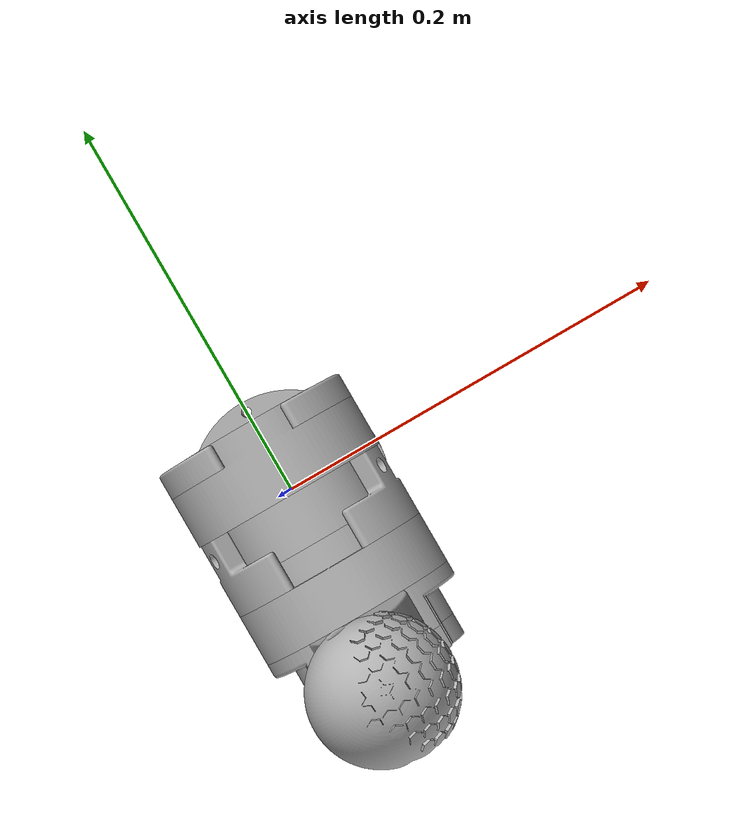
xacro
<?xml version="1.0" ?>
<robot name="rl12dof_urdf" xmlns:xacro="http://www.ros.org/wiki/xacro">

<xacro:include filename="$(find rl12dof_urdf_description)/urdf/materials.xacro" />
<xacro:include filename="$(find rl12dof_urdf_description)/urdf/rl12dof_urdf.ros2control" />
<xacro:include filename="$(find rl12dof_urdf_description)/urdf/rl12dof_urdf.gazebo" />
<link name="base_link">
  <inertial>
    <origin xyz="-4.647671670063145e-15 1.3063770683227124e-17 -0.009443778341178793" rpy="0 0 0"/>
    <mass value="1.843383246257708"/>
    <inertia ixx="0.00115" iyy="0.00115" izz="0.001895" ixy="-0.0" iyz="0.0" ixz="0.0"/>
  </inertial>
  <visual>
    <origin xyz="0 0 0" rpy="0 0 0"/>
    <geometry>
      <mesh filename="file://$(find rl12dof_urdf_description)/meshes/base_link.stl" scale="0.001 0.001 0.001"/>
    </geometry>
    <material name="silver"/>
  </visual>
  <collision>
    <origin xyz="0 0 0" rpy="0 0 0"/>
    <geometry>
      <mesh filename="file://$(find rl12dof_urdf_description)/meshes/base_link.stl" scale="0.001 0.001 0.001"/>
    </geometry>
  </collision>
</link>

<link name="Hip_Link_v28_1">
  <inertial>
    <origin xyz="7.175911054931479e-10 0.02293408940398056 0.032889581714081996" rpy="0 0 0"/>
    <mass value="0.05027240660953383"/>
    <inertia ixx="5.8e-05" iyy="8.3e-05" izz="4.2e-05" ixy="-0.0" iyz="-9e-06" ixz="0.0"/>
  </inertial>
  <visual>
    <origin xyz="-0.0 -0.0 -0.007807" rpy="0 0 0"/>
    <geometry>
      <mesh filename="file://$(find rl12dof_urdf_description)/meshes/Hip_Link_v28_1.stl" scale="0.001 0.001 0.001"/>
    </geometry>
    <material name="silver"/>
  </visual>
  <collision>
    <origin xyz="-0.0 -0.0 -0.007807" rpy="0 0 0"/>
    <geometry>
      <mesh filename="file://$(find rl12dof_urdf_description)/meshes/Hip_Link_v28_1.stl" scale="0.001 0.001 0.001"/>
    </geometry>
  </collision>
</link>

<link name="Hip_Pitch_v1_1">
  <inertial>
    <origin xyz="-4.652002529059626e-15 -0.008149307077147287 2.1458167374921455e-07" rpy="0 0 0"/>
    <mass value="1.843383246257708"/>
    <inertia ixx="0.00115" iyy="0.001895" izz="0.00115" ixy="-0.0" iyz="-0.0" ixz="-0.0"/>
  </inertial>
  <visual>
    <origin xyz="-0.0 -0.023241 -0.068373" rpy="0 0 0"/>
    <geometry>
      <mesh filename="file://$(find rl12dof_urdf_description)/meshes/Hip_Pitch_v1_1.stl" scale="0.001 0.001 0.001"/>
    </geometry>
    <material name="silver"/>
  </visual>
  <collision>
    <origin xyz="-0.0 -0.023241 -0.068373" rpy="0 0 0"/>
    <geometry>
      <mesh filename="file://$(find rl12dof_urdf_description)/meshes/Hip_Pitch_v1_1.stl" scale="0.001 0.001 0.001"/>
    </geometry>
  </collision>
</link>

<link name="Inner_Motor_Coupling_v26_1">
  <inertial>
    <origin xyz="-6.228509801904428e-14 -0.011955611335152752 2.145816738186035e-07" rpy="0 0 0"/>
    <mass value="0.10292194928398245"/>
    <inertia ixx="4.5e-05" iyy="7.9e-05" izz="4.5e-05" ixy="0.0" iyz="-0.0" ixz="-0.0"/>
  </inertial>
  <visual>
    <origin xyz="0.0 0.002159 -0.068373" rpy="0 0 0"/>
    <geometry>
      <mesh filename="file://$(find rl12dof_urdf_description)/meshes/Inner_Motor_Coupling_v26_1.stl" scale="0.001 0.001 0.001"/>
    </geometry>
    <material name="silver"/>
  </visual>
  <collision>
    <origin xyz="0.0 0.002159 -0.068373" rpy="0 0 0"/>
    <geometry>
      <mesh filename="file://$(find rl12dof_urdf_description)/meshes/Inner_Motor_Coupling_v26_1.stl" scale="0.001 0.001 0.001"/>
    </geometry>
  </collision>
</link>

<link name="Knee_Pitch_v1_1">
  <inertial>
    <origin xyz="-4.790402236164351e-15 -0.02084930707714723 2.1458167383248128e-07" rpy="0 0 0"/>
    <mass value="1.843383246257708"/>
    <inertia ixx="0.00115" iyy="0.001895" izz="0.00115" ixy="-0.0" iyz="-0.0" ixz="-0.0"/>
  </inertial>
  <visual>
    <origin xyz="0.0 0.026289 -0.068373" rpy="0 0 0"/>
    <geometry>
      <mesh filename="file://$(find rl12dof_urdf_description)/meshes/Knee_Pitch_v1_1.stl" scale="0.001 0.001 0.001"/>
    </geometry>
    <material name="silver"/>
  </visual>
  <collision>
    <origin xyz="0.0 0.026289 -0.068373" rpy="0 0 0"/>
    <geometry>
      <mesh filename="file://$(find rl12dof_urdf_description)/meshes/Knee_Pitch_v1_1.stl" scale="0.001 0.001 0.001"/>
    </geometry>
  </collision>
</link>

<link name="Outer_Motor_Coupling_v25_1">
  <inertial>
    <origin xyz="1.0843391533972325e-05 0.01372754107417416 -0.007629502315969955" rpy="0 0 0"/>
    <mass value="0.05683504911055313"/>
    <inertia ixx="4.5e-05" iyy="0.000102" izz="6.7e-05" ixy="0.0" iyz="0.0" ixz="0.0"/>
  </inertial>
  <visual>
    <origin xyz="0.0 0.038989 -0.068373" rpy="0 0 0"/>
    <geometry>
      <mesh filename="file://$(find rl12dof_urdf_description)/meshes/Outer_Motor_Coupling_v25_1.stl" scale="0.001 0.001 0.001"/>
    </geometry>
    <material name="silver"/>
  </visual>
  <collision>
    <origin xyz="0.0 0.038989 -0.068373" rpy="0 0 0"/>
    <geometry>
      <mesh filename="file://$(find rl12dof_urdf_description)/meshes/Outer_Motor_Coupling_v25_1.stl" scale="0.001 0.001 0.001"/>
    </geometry>
  </collision>
</link>

<link name="Right_Femur_Housing_v1_1">
  <inertial>
    <origin xyz="0.0017080774153519582 -0.00769221056776169 0.04135199009003378" rpy="0 0 0"/>
    <mass value="0.10891101907621499"/>
    <inertia ixx="0.00032" iyy="0.00037" izz="5.8e-05" ixy="0.0" iyz="-8e-06" ixz="-9e-06"/>
  </inertial>
  <visual>
    <origin xyz="0.0 0.064389 -0.068373" rpy="0 0 0"/>
    <geometry>
      <mesh filename="file://$(find rl12dof_urdf_description)/meshes/Right_Femur_Housing_v1_1.stl" scale="0.001 0.001 0.001"/>
    </geometry>
    <material name="silver"/>
  </visual>
  <collision>
    <origin xyz="0.0 0.064389 -0.068373" rpy="0 0 0"/>
    <geometry>
      <mesh filename="file://$(find rl12dof_urdf_description)/meshes/Right_Femur_Housing_v1_1.stl" scale="0.001 0.001 0.001"/>
    </geometry>
  </collision>
</link>

<link name="Right_Femur_Thigh_Cap_v1_1">
  <inertial>
    <origin xyz="0.0016712429420357115 -0.006367306228526978 0.06264013378626078" rpy="0 0 0"/>
    <mass value="0.06320007749994586"/>
    <inertia ixx="0.000175" iyy="0.000194" izz="2e-05" ixy="-0.0" iyz="2e-06" ixz="-3e-06"/>
  </inertial>
  <visual>
    <origin xyz="0.0 0.086614 -0.068373" rpy="0 0 0"/>
    <geometry>
      <mesh filename="file://$(find rl12dof_urdf_description)/meshes/Right_Femur_Thigh_Cap_v1_1.stl" scale="0.001 0.001 0.001"/>
    </geometry>
    <material name="silver"/>
  </visual>
  <collision>
    <origin xyz="0.0 0.086614 -0.068373" rpy="0 0 0"/>
    <geometry>
      <mesh filename="file://$(find rl12dof_urdf_description)/meshes/Right_Femur_Thigh_Cap_v1_1.stl" scale="0.001 0.001 0.001"/>
    </geometry>
  </collision>
</link>

<link name="Tibia_Link_v97_1">
  <inertial>
    <origin xyz="-0.0027084280294664624 1.7861163891352838e-05 0.07234585897355009" rpy="0 0 0"/>
    <mass value="0.0659279935898454"/>
    <inertia ixx="0.000123" iyy="0.000126" izz="7e-06" ixy="-0.0" iyz="0.0" ixz="2e-06"/>
  </inertial>
  <visual>
    <origin xyz="0.0 0.080962 -0.214423" rpy="0 0 0"/>
    <geometry>
      <mesh filename="file://$(find rl12dof_urdf_description)/meshes/Tibia_Link_v97_1.stl" scale="0.001 0.001 0.001"/>
    </geometry>
    <material name="silver"/>
  </visual>
  <collision>
    <origin xyz="0.0 0.080962 -0.214423" rpy="0 0 0"/>
    <geometry>
      <mesh filename="file://$(find rl12dof_urdf_description)/meshes/Tibia_Link_v97_1.stl" scale="0.001 0.001 0.001"/>
    </geometry>
  </collision>
</link>

<link name="Knee_Drive_Gear_v22_1">
  <inertial>
    <origin xyz="-1.4686789472412303e-16 -0.00964898980553662 2.1458155682885227e-07" rpy="0 0 0"/>
    <mass value="0.035412274196692246"/>
    <inertia ixx="7e-06" iyy="1.1e-05" izz="7e-06" ixy="-0.0" iyz="-0.0" ixz="0.0"/>
  </inertial>
  <visual>
    <origin xyz="0.0 0.064389 -0.068373" rpy="0 0 0"/>
    <geometry>
      <mesh filename="file://$(find rl12dof_urdf_description)/meshes/Knee_Drive_Gear_v22_1.stl" scale="0.001 0.001 0.001"/>
    </geometry>
    <material name="silver"/>
  </visual>
  <collision>
    <origin xyz="0.0 0.064389 -0.068373" rpy="0 0 0"/>
    <geometry>
      <mesh filename="file://$(find rl12dof_urdf_description)/meshes/Knee_Drive_Gear_v22_1.stl" scale="0.001 0.001 0.001"/>
    </geometry>
  </collision>
</link>

<link name="Knee_Driven_Gear_v1_1">
  <inertial>
    <origin xyz="-2.6659694766287807e-16 -0.0006253228920345411 2.145816601351047e-07" rpy="0 0 0"/>
    <mass value="0.005820129779056626"/>
    <inertia ixx="0.0" iyy="1e-06" izz="0.0" ixy="0.0" iyz="-0.0" ixz="-0.0"/>
  </inertial>
  <visual>
    <origin xyz="0.0 0.080962 -0.214423" rpy="0 0 0"/>
    <geometry>
      <mesh filename="file://$(find rl12dof_urdf_description)/meshes/Knee_Driven_Gear_v1_1.stl" scale="0.001 0.001 0.001"/>
    </geometry>
    <material name="silver"/>
  </visual>
  <collision>
    <origin xyz="0.0 0.080962 -0.214423" rpy="0 0 0"/>
    <geometry>
      <mesh filename="file://$(find rl12dof_urdf_description)/meshes/Knee_Driven_Gear_v1_1.stl" scale="0.001 0.001 0.001"/>
    </geometry>
  </collision>
</link>

<link name="Foot_V3_Foot_v1_1">
  <inertial>
    <origin xyz="0.0001101941483137212 6.634369011257468e-06 -0.0019715959340858014" rpy="0 0 0"/>
    <mass value="0.09318554706490734"/>
    <inertia ixx="3.8e-05" iyy="4e-05" izz="3.2e-05" ixy="-0.0" iyz="0.0" ixz="-1e-06"/>
  </inertial>
  <visual>
    <origin xyz="-0.003276 0.080962 -0.367069" rpy="0 0 0"/>
    <geometry>
      <mesh filename="file://$(find rl12dof_urdf_description)/meshes/Foot_V3_Foot_v1_1.stl" scale="0.001 0.001 0.001"/>
    </geometry>
    <material name="silver"/>
  </visual>
  <collision>
    <origin xyz="-0.003276 0.080962 -0.367069" rpy="0 0 0"/>
    <geometry>
      <mesh filename="file://$(find rl12dof_urdf_description)/meshes/Foot_V3_Foot_v1_1.stl" scale="0.001 0.001 0.001"/>
    </geometry>
  </collision>
</link>

<joint name="link1_to_base" type="continuous">
  <origin xyz="0.0 0.0 0.007807" rpy="0 0 0"/>
  <parent link="base_link"/>
  <child link="Hip_Link_v28_1"/>
  <axis xyz="0.0 0.0 1.0"/>
</joint>

<joint name="M2_to_hipLink" type="fixed">
  <origin xyz="0.0 0.023241 0.060566" rpy="0 0 0"/>
  <parent link="Hip_Link_v28_1"/>
  <child link="Hip_Pitch_v1_1"/>
</joint>

<joint name="link2_to_link1" type="continuous">
  <origin xyz="-0.0 -0.0254 0.0" rpy="0 0 0"/>
  <parent link="Hip_Pitch_v1_1"/>
  <child link="Inner_Motor_Coupling_v26_1"/>
  <axis xyz="0.0 -1.0 0.0"/>
</joint>

<joint name="M3_to_coupler" type="fixed">
  <origin xyz="0.0 -0.02413 0.0" rpy="0 0 0"/>
  <parent link="Inner_Motor_Coupling_v26_1"/>
  <child link="Knee_Pitch_v1_1"/>
</joint>

<joint name="coupler_to_coupler" type="fixed">
  <origin xyz="0.0 -0.0127 0.0" rpy="0 0 0"/>
  <parent link="Knee_Pitch_v1_1"/>
  <child link="Outer_Motor_Coupling_v25_1"/>
</joint>

<joint name="femur_to_M3" type="fixed">
  <origin xyz="0.0 -0.0381 0.0" rpy="0 0 0"/>
  <parent link="Knee_Pitch_v1_1"/>
  <child link="Right_Femur_Housing_v1_1"/>
</joint>

<joint name="cap_to_housing" type="fixed">
  <origin xyz="0.0 -0.022225 0.0" rpy="0 0 0"/>
  <parent link="Right_Femur_Housing_v1_1"/>
  <child link="Right_Femur_Thigh_Cap_v1_1"/>
</joint>

<joint name="link3_to_link2" type="continuous">
  <origin xyz="0.0 -0.016573 0.14605" rpy="0 0 0"/>
  <parent link="Right_Femur_Housing_v1_1"/>
  <child link="Tibia_Link_v97_1"/>
  <axis xyz="0.0 1.0 -0.0"/>
</joint>

<joint name="drive_to_M3" type="fixed">
  <origin xyz="0.0 -0.0381 0.0" rpy="0 0 0"/>
  <parent link="Knee_Pitch_v1_1"/>
  <child link="Knee_Drive_Gear_v22_1"/>
</joint>

<joint name="driven_to_tibia" type="fixed">
  <origin xyz="0.0 0.0 0.0" rpy="0 0 0"/>
  <parent link="Tibia_Link_v97_1"/>
  <child link="Knee_Driven_Gear_v1_1"/>
</joint>

<joint name="foot_to_tibia" type="fixed">
  <origin xyz="0.003276 0.0 0.152646" rpy="0 0 0"/>
  <parent link="Tibia_Link_v97_1"/>
  <child link="Foot_V3_Foot_v1_1"/>
</joint>

</robot>

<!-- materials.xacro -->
<robot name="rl12dof_urdf" xmlns:xacro="http://www.ros.org/wiki/xacro" >

<material name="silver">
  <color rgba="0.700 0.700 0.700 1.000"/>
</material>

</robot>

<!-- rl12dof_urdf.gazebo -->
<robot name="rl12dof_urdf" xmlns:xacro="http://www.ros.org/wiki/xacro" >

<xacro:property name="body_color" value="Gazebo/Silver" />

<gazebo reference="base_link">
  <material>${body_color}</material>
  <mu1>0.2</mu1>
  <mu2>0.2</mu2>
  <self_collide>true</self_collide>
  <gravity>true</gravity>
</gazebo>

<gazebo reference="Hip_Link_v28_1">
  <material>${body_color}</material>
  <mu1>0.2</mu1>
  <mu2>0.2</mu2>
  <self_collide>true</self_collide>
</gazebo>

<gazebo reference="Hip_Pitch_v1_1">
  <material>${body_color}</material>
  <mu1>0.2</mu1>
  <mu2>0.2</mu2>
  <self_collide>true</self_collide>
</gazebo>

<gazebo reference="Inner_Motor_Coupling_v26_1">
  <material>${body_color}</material>
  <mu1>0.2</mu1>
  <mu2>0.2</mu2>
  <self_collide>true</self_collide>
</gazebo>

<gazebo reference="Knee_Pitch_v1_1">
  <material>${body_color}</material>
  <mu1>0.2</mu1>
  <mu2>0.2</mu2>
  <self_collide>true</self_collide>
</gazebo>

<gazebo reference="Outer_Motor_Coupling_v25_1">
  <material>${body_color}</material>
  <mu1>0.2</mu1>
  <mu2>0.2</mu2>
  <self_collide>true</self_collide>
</gazebo>

<gazebo reference="Right_Femur_Housing_v1_1">
  <material>${body_color}</material>
  <mu1>0.2</mu1>
  <mu2>0.2</mu2>
  <self_collide>true</self_collide>
</gazebo>

<gazebo reference="Right_Femur_Thigh_Cap_v1_1">
  <material>${body_color}</material>
  <mu1>0.2</mu1>
  <mu2>0.2</mu2>
  <self_collide>true</self_collide>
</gazebo>

<gazebo reference="Tibia_Link_v97_1">
  <material>${body_color}</material>
  <mu1>0.2</mu1>
  <mu2>0.2</mu2>
  <self_collide>true</self_collide>
</gazebo>

<gazebo reference="Knee_Drive_Gear_v22_1">
  <material>${body_color}</material>
  <mu1>0.2</mu1>
  <mu2>0.2</mu2>
  <self_collide>true</self_collide>
</gazebo>

<gazebo reference="Knee_Driven_Gear_v1_1">
  <material>${body_color}</material>
  <mu1>0.2</mu1>
  <mu2>0.2</mu2>
  <self_collide>true</self_collide>
</gazebo>

<gazebo reference="Foot_V3_Foot_v1_1">
  <material>${body_color}</material>
  <mu1>0.2</mu1>
  <mu2>0.2</mu2>
  <self_collide>true</self_collide>
</gazebo>

</robot>
